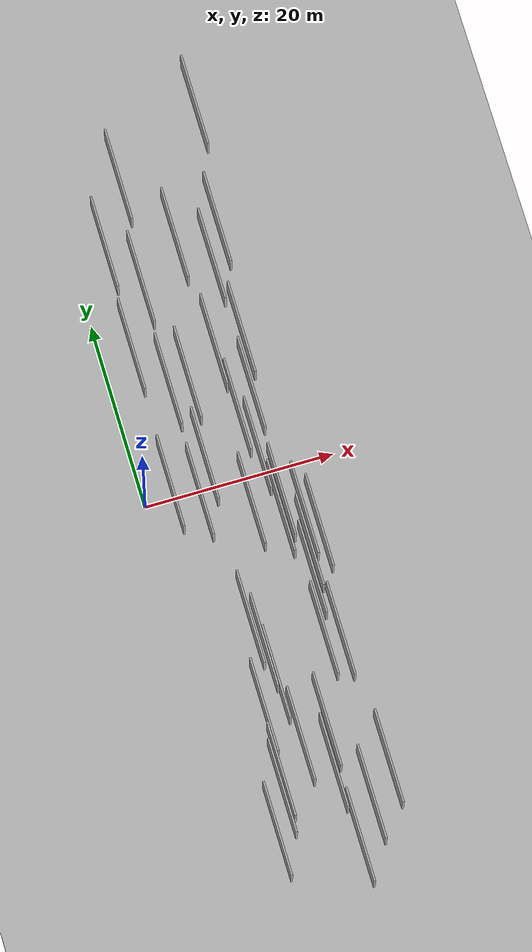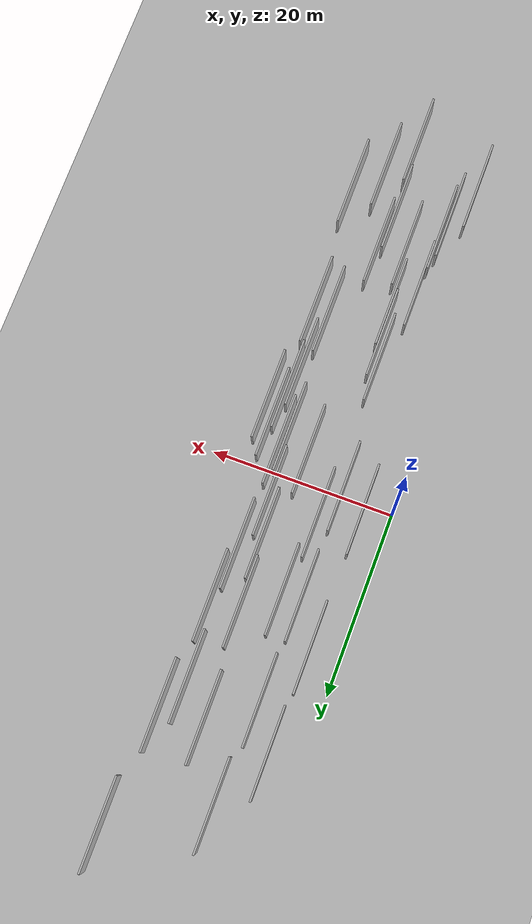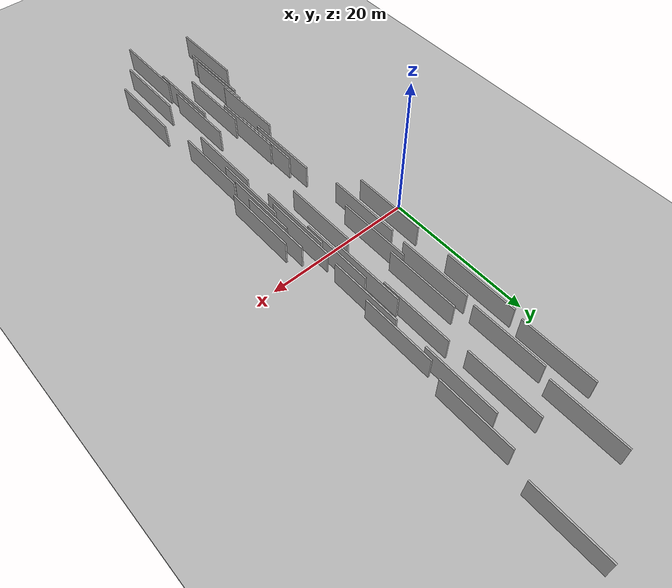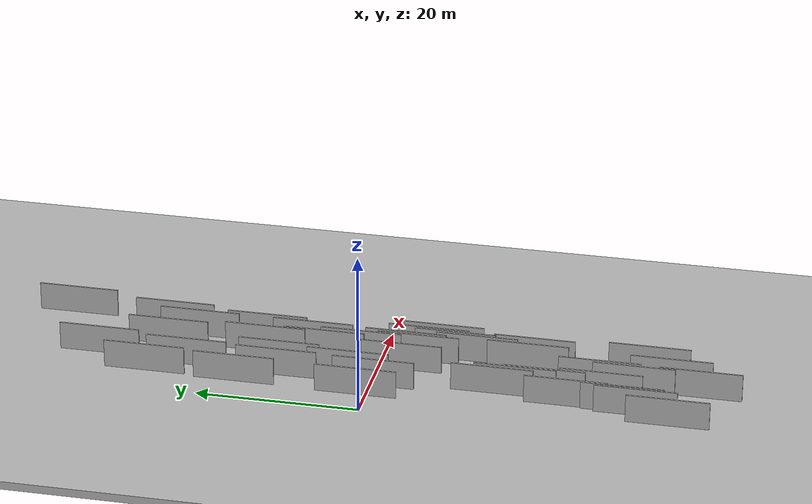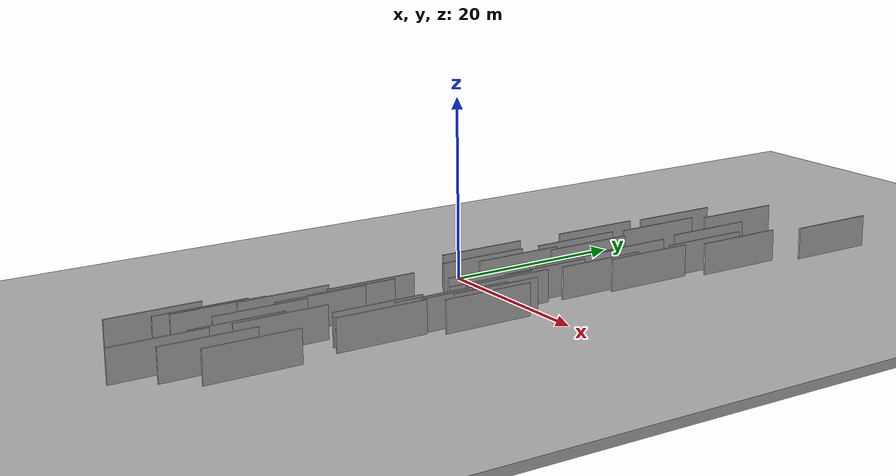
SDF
<?xml version="1.0" encoding="utf-8"?>

<sdf version="1.6">

   <world name="default">

      <gui fullscreen="0">

         <camera name="user_camera">

            <pose>-15 0 4.57585 0 0 0</pose>

            <view_controller>orbit</view_controller>

         </camera>

      </gui>

      <scene>

         <sky>

           <clouds>

             <speed>12</speed>

           </clouds>

         </sky>

         <ambient>0.4 0.4 0.4 1</ambient>

         <background>0.7 0.7 0.7 1</background>

         <shadows>1</shadows>

      </scene>

      <gravity>0 0 -9.8066</gravity>

      <magnetic_field>6e-06 2.3e-05 -4.2e-05</magnetic_field>

      <physics default="0" name="default_physics" type="ode">

         <ode>

            <solver>

               <type>quick</type>

               <iters>10</iters>

               <sor>1.0</sor>

               <use_dynamic_moi_rescaling>0</use_dynamic_moi_rescaling>

            </solver>

            <constraints>

               <cfm>0</cfm>

               <erp>0.2</erp>

               <contact_max_correcting_vel>100</contact_max_correcting_vel>

               <contact_surface_layer>0.001</contact_surface_layer>

            </constraints>

         </ode>

         <max_step_size>0.004</max_step_size>

         <real_time_factor>1</real_time_factor>

         <real_time_update_rate>250</real_time_update_rate>

      </physics>

      <light name="sun" type="directional">

         <cast_shadows>1</cast_shadows>

         <pose>0 0 10 0 0 0</pose>

         <diffuse>0.8 0.8 0.8 1</diffuse>

         <specular>0.2 0.2 0.2 1</specular>

         <attenuation>

            <range>1000</range>

            <constant>0.9</constant>

            <linear>0.01</linear>

            <quadratic>0.001</quadratic>

         </attenuation>

         <direction>-0.5 0.1 -0.9</direction>

      </light>

      <include>

         <name>ground_plane_1</name>

         <uri>model://HANNAS_ground_plane</uri>

         <pose>0 0 0  0 0 0</pose>

      </include>

      <include>

         <name>ground_plane_2</name>

         <uri>model://HANNAS_ground_plane</uri>

         <pose>100 0 0  0 0 0</pose>

      </include>

      <model name="HANNAS_wall_1">

         <static>1</static>

         <pose frame="">14.5591 14.6576 0.0 0.000000 0.000000 1.570796</pose>

         <link name="link">

            <pose frame="">0 0 2.00 0 0 0</pose>

            <collision name="collision">

               <geometry>

                  <box>

                     <size>10.00 0.2 4.00</size>

                  </box>

               </geometry>

               <max_contacts>10</max_contacts>

               <surface>

                  <contact>

                     <ode/>

                  </contact>

                  <bounce/>

                  <friction>

                     <torsional>

                        <ode/>

                     </torsional>

                     <ode/>

                  </friction>

               </surface>

            </collision>

            <visual name="visual">

               <cast_shadows>0</cast_shadows>

               <geometry>

                  <box>

                     <size>10.00 0.2 4.00</size>

                  </box>

               </geometry>

               <material>

                  <script>

                     <uri>model://HANNAS_wall/materials/scripts</uri>

                     <uri>model://HANNAS_wall/materials/textures</uri>

                     <name>vrc/HANNAS_wall</name>

                  </script>

               </material>

            </visual>

            <self_collide>0</self_collide>

            <enable_wind>0</enable_wind>

            <kinematic>0</kinematic>

         </link>

      </model>

      <model name="HANNAS_wall_2">

         <static>1</static>

         <pose frame="">12.6516 2.4701 0.0 0.000000 0.000000 1.570796</pose>

         <link name="link">

            <pose frame="">0 0 2.00 0 0 0</pose>

            <collision name="collision">

               <geometry>

                  <box>

                     <size>10.00 0.2 4.00</size>

                  </box>

               </geometry>

               <max_contacts>10</max_contacts>

               <surface>

                  <contact>

                     <ode/>

                  </contact>

                  <bounce/>

                  <friction>

                     <torsional>

                        <ode/>

                     </torsional>

                     <ode/>

                  </friction>

               </surface>

            </collision>

            <visual name="visual">

               <cast_shadows>0</cast_shadows>

               <geometry>

                  <box>

                     <size>10.00 0.2 4.00</size>

                  </box>

               </geometry>

               <material>

                  <script>

                     <uri>model://HANNAS_wall/materials/scripts</uri>

                     <uri>model://HANNAS_wall/materials/textures</uri>

                     <name>vrc/HANNAS_wall</name>

                  </script>

               </material>

            </visual>

            <self_collide>0</self_collide>

            <enable_wind>0</enable_wind>

            <kinematic>0</kinematic>

         </link>

      </model>

      <model name="HANNAS_wall_3">

         <static>1</static>

         <pose frame="">5.6440 -0.5587 0.0 0.000000 0.000000 1.570796</pose>

         <link name="link">

            <pose frame="">0 0 2.00 0 0 0</pose>

            <collision name="collision">

               <geometry>

                  <box>

                     <size>10.00 0.2 4.00</size>

                  </box>

               </geometry>

               <max_contacts>10</max_contacts>

               <surface>

                  <contact>

                     <ode/>

                  </contact>

                  <bounce/>

                  <friction>

                     <torsional>

                        <ode/>

                     </torsional>

                     <ode/>

                  </friction>

               </surface>

            </collision>

            <visual name="visual">

               <cast_shadows>0</cast_shadows>

               <geometry>

                  <box>

                     <size>10.00 0.2 4.00</size>

                  </box>

               </geometry>

               <material>

                  <script>

                     <uri>model://HANNAS_wall/materials/scripts</uri>

                     <uri>model://HANNAS_wall/materials/textures</uri>

                     <name>vrc/HANNAS_wall</name>

                  </script>

               </material>

            </visual>

            <self_collide>0</self_collide>

            <enable_wind>0</enable_wind>

            <kinematic>0</kinematic>

         </link>

      </model>

      <model name="HANNAS_wall_4">

         <static>1</static>

         <pose frame="">10.8336 26.2624 0.0 0.000000 0.000000 1.570796</pose>

         <link name="link">

            <pose frame="">0 0 2.00 0 0 0</pose>

            <collision name="collision">

               <geometry>

                  <box>

                     <size>10.00 0.2 4.00</size>

                  </box>

               </geometry>

               <max_contacts>10</max_contacts>

               <surface>

                  <contact>

                     <ode/>

                  </contact>

                  <bounce/>

                  <friction>

                     <torsional>

                        <ode/>

                     </torsional>

                     <ode/>

                  </friction>

               </surface>

            </collision>

            <visual name="visual">

               <cast_shadows>0</cast_shadows>

               <geometry>

                  <box>

                     <size>10.00 0.2 4.00</size>

                  </box>

               </geometry>

               <material>

                  <script>

                     <uri>model://HANNAS_wall/materials/scripts</uri>

                     <uri>model://HANNAS_wall/materials/textures</uri>

                     <name>vrc/HANNAS_wall</name>

                  </script>

               </material>

            </visual>

            <self_collide>0</self_collide>

            <enable_wind>0</enable_wind>

            <kinematic>0</kinematic>

         </link>

      </model>

      <model name="HANNAS_wall_5">

         <static>1</static>

         <pose frame="">14.3094 -11.5916 0.0 0.000000 0.000000 1.570796</pose>

         <link name="link">

            <pose frame="">0 0 2.00 0 0 0</pose>

            <collision name="collision">

               <geometry>

                  <box>

                     <size>10.00 0.2 4.00</size>

                  </box>

               </geometry>

               <max_contacts>10</max_contacts>

               <surface>

                  <contact>

                     <ode/>

                  </contact>

                  <bounce/>

                  <friction>

                     <torsional>

                        <ode/>

                     </torsional>

                     <ode/>

                  </friction>

               </surface>

            </collision>

            <visual name="visual">

               <cast_shadows>0</cast_shadows>

               <geometry>

                  <box>

                     <size>10.00 0.2 4.00</size>

                  </box>

               </geometry>

               <material>

                  <script>

                     <uri>model://HANNAS_wall/materials/scripts</uri>

                     <uri>model://HANNAS_wall/materials/textures</uri>

                     <name>vrc/HANNAS_wall</name>

                  </script>

               </material>

            </visual>

            <self_collide>0</self_collide>

            <enable_wind>0</enable_wind>

            <kinematic>0</kinematic>

         </link>

      </model>

      <model name="HANNAS_wall_6">

         <static>1</static>

         <pose frame="">5.8352 11.5006 0.0 0.000000 0.000000 1.570796</pose>

         <link name="link">

            <pose frame="">0 0 2.00 0 0 0</pose>

            <collision name="collision">

               <geometry>

                  <box>

                     <size>10.00 0.2 4.00</size>

                  </box>

               </geometry>

               <max_contacts>10</max_contacts>

               <surface>

                  <contact>

                     <ode/>

                  </contact>

                  <bounce/>

                  <friction>

                     <torsional>

                        <ode/>

                     </torsional>

                     <ode/>

                  </friction>

               </surface>

            </collision>

            <visual name="visual">

               <cast_shadows>0</cast_shadows>

               <geometry>

                  <box>

                     <size>10.00 0.2 4.00</size>

                  </box>

               </geometry>

               <material>

                  <script>

                     <uri>model://HANNAS_wall/materials/scripts</uri>

                     <uri>model://HANNAS_wall/materials/textures</uri>

                     <name>vrc/HANNAS_wall</name>

                  </script>

               </material>

            </visual>

            <self_collide>0</self_collide>

            <enable_wind>0</enable_wind>

            <kinematic>0</kinematic>

         </link>

      </model>

      <model name="HANNAS_wall_7">

         <static>1</static>

         <pose frame="">3.0012 1.0542 0.0 0.000000 0.000000 1.570796</pose>

         <link name="link">

            <pose frame="">0 0 2.00 0 0 0</pose>

            <collision name="collision">

               <geometry>

                  <box>

                     <size>10.00 0.2 4.00</size>

                  </box>

               </geometry>

               <max_contacts>10</max_contacts>

               <surface>

                  <contact>

                     <ode/>

                  </contact>

                  <bounce/>

                  <friction>

                     <torsional>

                        <ode/>

                     </torsional>

                     <ode/>

                  </friction>

               </surface>

            </collision>

            <visual name="visual">

               <cast_shadows>0</cast_shadows>

               <geometry>

                  <box>

                     <size>10.00 0.2 4.00</size>

                  </box>

               </geometry>

               <material>

                  <script>

                     <uri>model://HANNAS_wall/materials/scripts</uri>

                     <uri>model://HANNAS_wall/materials/textures</uri>

                     <name>vrc/HANNAS_wall</name>

                  </script>

               </material>

            </visual>

            <self_collide>0</self_collide>

            <enable_wind>0</enable_wind>

            <kinematic>0</kinematic>

         </link>

      </model>

      <model name="HANNAS_wall_8">

         <static>1</static>

         <pose frame="">10.9776 -39.4371 0.0 0.000000 0.000000 1.570796</pose>

         <link name="link">

            <pose frame="">0 0 2.00 0 0 0</pose>

            <collision name="collision">

               <geometry>

                  <box>

                     <size>10.00 0.2 4.00</size>

                  </box>

               </geometry>

               <max_contacts>10</max_contacts>

               <surface>

                  <contact>

                     <ode/>

                  </contact>

                  <bounce/>

                  <friction>

                     <torsional>

                        <ode/>

                     </torsional>

                     <ode/>

                  </friction>

               </surface>

            </collision>

            <visual name="visual">

               <cast_shadows>0</cast_shadows>

               <geometry>

                  <box>

                     <size>10.00 0.2 4.00</size>

                  </box>

               </geometry>

               <material>

                  <script>

                     <uri>model://HANNAS_wall/materials/scripts</uri>

                     <uri>model://HANNAS_wall/materials/textures</uri>

                     <name>vrc/HANNAS_wall</name>

                  </script>

               </material>

            </visual>

            <self_collide>0</self_collide>

            <enable_wind>0</enable_wind>

            <kinematic>0</kinematic>

         </link>

      </model>

      <model name="HANNAS_wall_9">

         <static>1</static>

         <pose frame="">15.4946 26.6555 0.0 0.000000 0.000000 1.570796</pose>

         <link name="link">

            <pose frame="">0 0 2.00 0 0 0</pose>

            <collision name="collision">

               <geometry>

                  <box>

                     <size>10.00 0.2 4.00</size>

                  </box>

               </geometry>

               <max_contacts>10</max_contacts>

               <surface>

                  <contact>

                     <ode/>

                  </contact>

                  <bounce/>

                  <friction>

                     <torsional>

                        <ode/>

                     </torsional>

                     <ode/>

                  </friction>

               </surface>

            </collision>

            <visual name="visual">

               <cast_shadows>0</cast_shadows>

               <geometry>

                  <box>

                     <size>10.00 0.2 4.00</size>

                  </box>

               </geometry>

               <material>

                  <script>

                     <uri>model://HANNAS_wall/materials/scripts</uri>

                     <uri>model://HANNAS_wall/materials/textures</uri>

                     <name>vrc/HANNAS_wall</name>

                  </script>

               </material>

            </visual>

            <self_collide>0</self_collide>

            <enable_wind>0</enable_wind>

            <kinematic>0</kinematic>

         </link>

      </model>

      <model name="HANNAS_wall_10">

         <static>1</static>

         <pose frame="">13.8523 23.0509 0.0 0.000000 0.000000 1.570796</pose>

         <link name="link">

            <pose frame="">0 0 2.00 0 0 0</pose>

            <collision name="collision">

               <geometry>

                  <box>

                     <size>10.00 0.2 4.00</size>

                  </box>

               </geometry>

               <max_contacts>10</max_contacts>

               <surface>

                  <contact>

                     <ode/>

                  </contact>

                  <bounce/>

                  <friction>

                     <torsional>

                        <ode/>

                     </torsional>

                     <ode/>

                  </friction>

               </surface>

            </collision>

            <visual name="visual">

               <cast_shadows>0</cast_shadows>

               <geometry>

                  <box>

                     <size>10.00 0.2 4.00</size>

                  </box>

               </geometry>

               <material>

                  <script>

                     <uri>model://HANNAS_wall/materials/scripts</uri>

                     <uri>model://HANNAS_wall/materials/textures</uri>

                     <name>vrc/HANNAS_wall</name>

                  </script>

               </material>

            </visual>

            <self_collide>0</self_collide>

            <enable_wind>0</enable_wind>

            <kinematic>0</kinematic>

         </link>

      </model>

      <model name="HANNAS_wall_11">

         <static>1</static>

         <pose frame="">8.2308 -27.8150 0.0 0.000000 0.000000 1.570796</pose>

         <link name="link">

            <pose frame="">0 0 2.00 0 0 0</pose>

            <collision name="collision">

               <geometry>

                  <box>

                     <size>10.00 0.2 4.00</size>

                  </box>

               </geometry>

               <max_contacts>10</max_contacts>

               <surface>

                  <contact>

                     <ode/>

                  </contact>

                  <bounce/>

                  <friction>

                     <torsional>

                        <ode/>

                     </torsional>

                     <ode/>

                  </friction>

               </surface>

            </collision>

            <visual name="visual">

               <cast_shadows>0</cast_shadows>

               <geometry>

                  <box>

                     <size>10.00 0.2 4.00</size>

                  </box>

               </geometry>

               <material>

                  <script>

                     <uri>model://HANNAS_wall/materials/scripts</uri>

                     <uri>model://HANNAS_wall/materials/textures</uri>

                     <name>vrc/HANNAS_wall</name>

                  </script>

               </material>

            </visual>

            <self_collide>0</self_collide>

            <enable_wind>0</enable_wind>

            <kinematic>0</kinematic>

         </link>

      </model>

      <model name="HANNAS_wall_12">

         <static>1</static>

         <pose frame="">7.9316 11.6078 0.0 0.000000 0.000000 1.570796</pose>

         <link name="link">

            <pose frame="">0 0 2.00 0 0 0</pose>

            <collision name="collision">

               <geometry>

                  <box>

                     <size>10.00 0.2 4.00</size>

                  </box>

               </geometry>

               <max_contacts>10</max_contacts>

               <surface>

                  <contact>

                     <ode/>

                  </contact>

                  <bounce/>

                  <friction>

                     <torsional>

                        <ode/>

                     </torsional>

                     <ode/>

                  </friction>

               </surface>

            </collision>

            <visual name="visual">

               <cast_shadows>0</cast_shadows>

               <geometry>

                  <box>

                     <size>10.00 0.2 4.00</size>

                  </box>

               </geometry>

               <material>

                  <script>

                     <uri>model://HANNAS_wall/materials/scripts</uri>

                     <uri>model://HANNAS_wall/materials/textures</uri>

                     <name>vrc/HANNAS_wall</name>

                  </script>

               </material>

            </visual>

            <self_collide>0</self_collide>

            <enable_wind>0</enable_wind>

            <kinematic>0</kinematic>

         </link>

      </model>

      <model name="HANNAS_wall_13">

         <static>1</static>

         <pose frame="">16.0471 -32.5343 0.0 0.000000 0.000000 1.570796</pose>

         <link name="link">

            <pose frame="">0 0 2.00 0 0 0</pose>

            <collision name="collision">

               <geometry>

                  <box>

                     <size>10.00 0.2 4.00</size>

                  </box>

               </geometry>

               <max_contacts>10</max_contacts>

               <surface>

                  <contact>

                     <ode/>

                  </contact>

                  <bounce/>

                  <friction>

                     <torsional>

                        <ode/>

                     </torsional>

                     <ode/>

                  </friction>

               </surface>

            </collision>

            <visual name="visual">

               <cast_shadows>0</cast_shadows>

               <geometry>

                  <box>

                     <size>10.00 0.2 4.00</size>

                  </box>

               </geometry>

               <material>

                  <script>

                     <uri>model://HANNAS_wall/materials/scripts</uri>

                     <uri>model://HANNAS_wall/materials/textures</uri>

                     <name>vrc/HANNAS_wall</name>

                  </script>

               </material>

            </visual>

            <self_collide>0</self_collide>

            <enable_wind>0</enable_wind>

            <kinematic>0</kinematic>

         </link>

      </model>

      <model name="HANNAS_wall_14">

         <static>1</static>

         <pose frame="">13.3429 -35.5786 0.0 0.000000 0.000000 1.570796</pose>

         <link name="link">

            <pose frame="">0 0 2.00 0 0 0</pose>

            <collision name="collision">

               <geometry>

                  <box>

                     <size>10.00 0.2 4.00</size>

                  </box>

               </geometry>

               <max_contacts>10</max_contacts>

               <surface>

                  <contact>

                     <ode/>

                  </contact>

                  <bounce/>

                  <friction>

                     <torsional>

                        <ode/>

                     </torsional>

                     <ode/>

                  </friction>

               </surface>

            </collision>

            <visual name="visual">

               <cast_shadows>0</cast_shadows>

               <geometry>

                  <box>

                     <size>10.00 0.2 4.00</size>

                  </box>

               </geometry>

               <material>

                  <script>

                     <uri>model://HANNAS_wall/materials/scripts</uri>

                     <uri>model://HANNAS_wall/materials/textures</uri>

                     <name>vrc/HANNAS_wall</name>

                  </script>

               </material>

            </visual>

            <self_collide>0</self_collide>

            <enable_wind>0</enable_wind>

            <kinematic>0</kinematic>

         </link>

      </model>

      <model name="HANNAS_wall_15">

         <static>1</static>

         <pose frame="">13.6002 -2.9209 0.0 0.000000 0.000000 1.570796</pose>

         <link name="link">

            <pose frame="">0 0 2.00 0 0 0</pose>

            <collision name="collision">

               <geometry>

                  <box>

                     <size>10.00 0.2 4.00</size>

                  </box>

               </geometry>

               <max_contacts>10</max_contacts>

               <surface>

                  <contact>

                     <ode/>

                  </contact>

                  <bounce/>

                  <friction>

                     <torsional>

                        <ode/>

                     </torsional>

                     <ode/>

                  </friction>

               </surface>

            </collision>

            <visual name="visual">

               <cast_shadows>0</cast_shadows>

               <geometry>

                  <box>

                     <size>10.00 0.2 4.00</size>

                  </box>

               </geometry>

               <material>

                  <script>

                     <uri>model://HANNAS_wall/materials/scripts</uri>

                     <uri>model://HANNAS_wall/materials/textures</uri>

                     <name>vrc/HANNAS_wall</name>

                  </script>

               </material>

            </visual>

            <self_collide>0</self_collide>

            <enable_wind>0</enable_wind>

            <kinematic>0</kinematic>

         </link>

      </model>

      <model name="HANNAS_wall_16">

         <static>1</static>

         <pose frame="">3.6301 27.3624 0.0 0.000000 0.000000 1.570796</pose>

         <link name="link">

            <pose frame="">0 0 2.00 0 0 0</pose>

            <collision name="collision">

               <geometry>

                  <box>

                     <size>10.00 0.2 4.00</size>

                  </box>

               </geometry>

               <max_contacts>10</max_contacts>

               <surface>

                  <contact>

                     <ode/>

                  </contact>

                  <bounce/>

                  <friction>

                     <torsional>

                        <ode/>

                     </torsional>

                     <ode/>

                  </friction>

               </surface>

            </collision>

            <visual name="visual">

               <cast_shadows>0</cast_shadows>

               <geometry>

                  <box>

                     <size>10.00 0.2 4.00</size>

                  </box>

               </geometry>

               <material>

                  <script>

                     <uri>model://HANNAS_wall/materials/scripts</uri>

                     <uri>model://HANNAS_wall/materials/textures</uri>

                     <name>vrc/HANNAS_wall</name>

                  </script>

               </material>

            </visual>

            <self_collide>0</self_collide>

            <enable_wind>0</enable_wind>

            <kinematic>0</kinematic>

         </link>

      </model>

      <model name="HANNAS_wall_17">

         <static>1</static>

         <pose frame="">5.3060 -30.7941 0.0 0.000000 0.000000 1.570796</pose>

         <link name="link">

            <pose frame="">0 0 2.00 0 0 0</pose>

            <collision name="collision">

               <geometry>

                  <box>

                     <size>10.00 0.2 4.00</size>

                  </box>

               </geometry>

               <max_contacts>10</max_contacts>

               <surface>

                  <contact>

                     <ode/>

                  </contact>

                  <bounce/>

                  <friction>

                     <torsional>

                        <ode/>

                     </torsional>

                     <ode/>

                  </friction>

               </surface>

            </collision>

            <visual name="visual">

               <cast_shadows>0</cast_shadows>

               <geometry>

                  <box>

                     <size>10.00 0.2 4.00</size>

                  </box>

               </geometry>

               <material>

                  <script>

                     <uri>model://HANNAS_wall/materials/scripts</uri>

                     <uri>model://HANNAS_wall/materials/textures</uri>

                     <name>vrc/HANNAS_wall</name>

                  </script>

               </material>

            </visual>

            <self_collide>0</self_collide>

            <enable_wind>0</enable_wind>

            <kinematic>0</kinematic>

         </link>

      </model>

      <model name="HANNAS_wall_18">

         <static>1</static>

         <pose frame="">6.8019 -14.8491 0.0 0.000000 0.000000 1.570796</pose>

         <link name="link">

            <pose frame="">0 0 2.00 0 0 0</pose>

            <collision name="collision">

               <geometry>

                  <box>

                     <size>10.00 0.2 4.00</size>

                  </box>

               </geometry>

               <max_contacts>10</max_contacts>

               <surface>

                  <contact>

                     <ode/>

                  </contact>

                  <bounce/>

                  <friction>

                     <torsional>

                        <ode/>

                     </torsional>

                     <ode/>

                  </friction>

               </surface>

            </collision>

            <visual name="visual">

               <cast_shadows>0</cast_shadows>

               <geometry>

                  <box>

                     <size>10.00 0.2 4.00</size>

                  </box>

               </geometry>

               <material>

                  <script>

                     <uri>model://HANNAS_wall/materials/scripts</uri>

                     <uri>model://HANNAS_wall/materials/textures</uri>

                     <name>vrc/HANNAS_wall</name>

                  </script>

               </material>

            </visual>

            <self_collide>0</self_collide>

            <enable_wind>0</enable_wind>

            <kinematic>0</kinematic>

         </link>

      </model>

      <model name="HANNAS_wall_19">

         <static>1</static>

         <pose frame="">11.4853 14.1973 0.0 0.000000 0.000000 1.570796</pose>

         <link name="link">

            <pose frame="">0 0 2.00 0 0 0</pose>

            <collision name="collision">

               <geometry>

                  <box>

                     <size>10.00 0.2 4.00</size>

                  </box>

               </geometry>

               <max_contacts>10</max_contacts>

               <surface>

                  <contact>

                     <ode/>

                  </contact>

                  <bounce/>

                  <friction>

                     <torsional>

                        <ode/>

                     </torsional>

                     <ode/>

                  </friction>

               </surface>

            </collision>

            <visual name="visual">

               <cast_shadows>0</cast_shadows>

               <geometry>

                  <box>

                     <size>10.00 0.2 4.00</size>

                  </box>

               </geometry>

               <material>

                  <script>

                     <uri>model://HANNAS_wall/materials/scripts</uri>

                     <uri>model://HANNAS_wall/materials/textures</uri>

                     <name>vrc/HANNAS_wall</name>

                  </script>

               </material>

            </visual>

            <self_collide>0</self_collide>

            <enable_wind>0</enable_wind>

            <kinematic>0</kinematic>

         </link>

      </model>

      <model name="HANNAS_wall_20">

         <static>1</static>

         <pose frame="">16.8270 39.4609 0.0 0.000000 0.000000 1.570796</pose>

         <link name="link">

            <pose frame="">0 0 2.00 0 0 0</pose>

            <collision name="collision">

               <geometry>

                  <box>

                     <size>10.00 0.2 4.00</size>

                  </box>

               </geometry>

               <max_contacts>10</max_contacts>

               <surface>

                  <contact>

                     <ode/>

                  </contact>

                  <bounce/>

                  <friction>

                     <torsional>

                        <ode/>

                     </torsional>

                     <ode/>

                  </friction>

               </surface>

            </collision>

            <visual name="visual">

               <cast_shadows>0</cast_shadows>

               <geometry>

                  <box>

                     <size>10.00 0.2 4.00</size>

                  </box>

               </geometry>

               <material>

                  <script>

                     <uri>model://HANNAS_wall/materials/scripts</uri>

                     <uri>model://HANNAS_wall/materials/textures</uri>

                     <name>vrc/HANNAS_wall</name>

                  </script>

               </material>

            </visual>

            <self_collide>0</self_collide>

            <enable_wind>0</enable_wind>

            <kinematic>0</kinematic>

         </link>

      </model>

      <model name="HANNAS_wall_21">

         <static>1</static>

         <pose frame="">13.6055 -17.9952 0.0 0.000000 0.000000 1.570796</pose>

         <link name="link">

            <pose frame="">0 0 2.00 0 0 0</pose>

            <collision name="collision">

               <geometry>

                  <box>

                     <size>10.00 0.2 4.00</size>

                  </box>

               </geometry>

               <max_contacts>10</max_contacts>

               <surface>

                  <contact>

                     <ode/>

                  </contact>

                  <bounce/>

                  <friction>

                     <torsional>

                        <ode/>

                     </torsional>

                     <ode/>

                  </friction>

               </surface>

            </collision>

            <visual name="visual">

               <cast_shadows>0</cast_shadows>

               <geometry>

                  <box>

                     <size>10.00 0.2 4.00</size>

                  </box>

               </geometry>

               <material>

                  <script>

                     <uri>model://HANNAS_wall/materials/scripts</uri>

                     <uri>model://HANNAS_wall/materials/textures</uri>

                     <name>vrc/HANNAS_wall</name>

                  </script>

               </material>

            </visual>

            <self_collide>0</self_collide>

            <enable_wind>0</enable_wind>

            <kinematic>0</kinematic>

         </link>

      </model>

      <model name="HANNAS_wall_22">

         <static>1</static>

         <pose frame="">16.3562 -7.1134 0.0 0.000000 0.000000 1.570796</pose>

         <link name="link">

            <pose frame="">0 0 2.00 0 0 0</pose>

            <collision name="collision">

               <geometry>

                  <box>

                     <size>10.00 0.2 4.00</size>

                  </box>

               </geometry>

               <max_contacts>10</max_contacts>

               <surface>

                  <contact>

                     <ode/>

                  </contact>

                  <bounce/>

                  <friction>

                     <torsional>

                        <ode/>

                     </torsional>

                     <ode/>

                  </friction>

               </surface>

            </collision>

            <visual name="visual">

               <cast_shadows>0</cast_shadows>

               <geometry>

                  <box>

                     <size>10.00 0.2 4.00</size>

                  </box>

               </geometry>

               <material>

                  <script>

                     <uri>model://HANNAS_wall/materials/scripts</uri>

                     <uri>model://HANNAS_wall/materials/textures</uri>

                     <name>vrc/HANNAS_wall</name>

                  </script>

               </material>

            </visual>

            <self_collide>0</self_collide>

            <enable_wind>0</enable_wind>

            <kinematic>0</kinematic>

         </link>

      </model>

      <model name="HANNAS_wall_23">

         <static>1</static>

         <pose frame="">3.2082 -36.5360 0.0 0.000000 0.000000 1.570796</pose>

         <link name="link">

            <pose frame="">0 0 2.00 0 0 0</pose>

            <collision name="collision">

               <geometry>

                  <box>

                     <size>10.00 0.2 4.00</size>

                  </box>

               </geometry>

               <max_contacts>10</max_contacts>

               <surface>

                  <contact>

                     <ode/>

                  </contact>

                  <bounce/>

                  <friction>

                     <torsional>

                        <ode/>

                     </torsional>

                     <ode/>

                  </friction>

               </surface>

            </collision>

            <visual name="visual">

               <cast_shadows>0</cast_shadows>

               <geometry>

                  <box>

                     <size>10.00 0.2 4.00</size>

                  </box>

               </geometry>

               <material>

                  <script>

                     <uri>model://HANNAS_wall/materials/scripts</uri>

                     <uri>model://HANNAS_wall/materials/textures</uri>

                     <name>vrc/HANNAS_wall</name>

                  </script>

               </material>

            </visual>

            <self_collide>0</self_collide>

            <enable_wind>0</enable_wind>

            <kinematic>0</kinematic>

         </link>

      </model>

      <model name="HANNAS_wall_24">

         <static>1</static>

         <pose frame="">5.5237 -23.9628 0.0 0.000000 0.000000 1.570796</pose>

         <link name="link">

            <pose frame="">0 0 2.00 0 0 0</pose>

            <collision name="collision">

               <geometry>

                  <box>

                     <size>10.00 0.2 4.00</size>

                  </box>

               </geometry>

               <max_contacts>10</max_contacts>

               <surface>

                  <contact>

                     <ode/>

                  </contact>

                  <bounce/>

                  <friction>

                     <torsional>

                        <ode/>

                     </torsional>

                     <ode/>

                  </friction>

               </surface>

            </collision>

            <visual name="visual">

               <cast_shadows>0</cast_shadows>

               <geometry>

                  <box>

                     <size>10.00 0.2 4.00</size>

                  </box>

               </geometry>

               <material>

                  <script>

                     <uri>model://HANNAS_wall/materials/scripts</uri>

                     <uri>model://HANNAS_wall/materials/textures</uri>

                     <name>vrc/HANNAS_wall</name>

                  </script>

               </material>

            </visual>

            <self_collide>0</self_collide>

            <enable_wind>0</enable_wind>

            <kinematic>0</kinematic>

         </link>

      </model>

      <model name="HANNAS_wall_25">

         <static>1</static>

         <pose frame="">13.0710 -4.5706 0.0 0.000000 0.000000 1.570796</pose>

         <link name="link">

            <pose frame="">0 0 2.00 0 0 0</pose>

            <collision name="collision">

               <geometry>

                  <box>

                     <size>10.00 0.2 4.00</size>

                  </box>

               </geometry>

               <max_contacts>10</max_contacts>

               <surface>

                  <contact>

                     <ode/>

                  </contact>

                  <bounce/>

                  <friction>

                     <torsional>

                        <ode/>

                     </torsional>

                     <ode/>

                  </friction>

               </surface>

            </collision>

            <visual name="visual">

               <cast_shadows>0</cast_shadows>

               <geometry>

                  <box>

                     <size>10.00 0.2 4.00</size>

                  </box>

               </geometry>

               <material>

                  <script>

                     <uri>model://HANNAS_wall/materials/scripts</uri>

                     <uri>model://HANNAS_wall/materials/textures</uri>

                     <name>vrc/HANNAS_wall</name>

                  </script>

               </material>

            </visual>

            <self_collide>0</self_collide>

            <enable_wind>0</enable_wind>

            <kinematic>0</kinematic>

         </link>

      </model>

      <model name="HANNAS_wall_26">

         <static>1</static>

         <pose frame="">14.8369 -8.8168 0.0 0.000000 0.000000 1.570796</pose>

         <link name="link">

            <pose frame="">0 0 2.00 0 0 0</pose>

            <collision name="collision">

               <geometry>

                  <box>

                     <size>10.00 0.2 4.00</size>

                  </box>

               </geometry>

               <max_contacts>10</max_contacts>

               <surface>

                  <contact>

                     <ode/>

                  </contact>

                  <bounce/>

                  <friction>

                     <torsional>

                        <ode/>

                     </torsional>

                     <ode/>

                  </friction>

               </surface>

            </collision>

            <visual name="visual">

               <cast_shadows>0</cast_shadows>

               <geometry>

                  <box>

                     <size>10.00 0.2 4.00</size>

                  </box>

               </geometry>

               <material>

                  <script>

                     <uri>model://HANNAS_wall/materials/scripts</uri>

                     <uri>model://HANNAS_wall/materials/textures</uri>

                     <name>vrc/HANNAS_wall</name>

                  </script>

               </material>

            </visual>

            <self_collide>0</self_collide>

            <enable_wind>0</enable_wind>

            <kinematic>0</kinematic>

         </link>

      </model>

      <model name="HANNAS_wall_27">

         <static>1</static>

         <pose frame="">11.1741 -27.1541 0.0 0.000000 0.000000 1.570796</pose>

         <link name="link">

            <pose frame="">0 0 2.00 0 0 0</pose>

            <collision name="collision">

               <geometry>

                  <box>

                     <size>10.00 0.2 4.00</size>

                  </box>

               </geometry>

               <max_contacts>10</max_contacts>

               <surface>

                  <contact>

                     <ode/>

                  </contact>

                  <bounce/>

                  <friction>

                     <torsional>

                        <ode/>

                     </torsional>

                     <ode/>

                  </friction>

               </surface>

            </collision>

            <visual name="visual">

               <cast_shadows>0</cast_shadows>

               <geometry>

                  <box>

                     <size>10.00 0.2 4.00</size>

                  </box>

               </geometry>

               <material>

                  <script>

                     <uri>model://HANNAS_wall/materials/scripts</uri>

                     <uri>model://HANNAS_wall/materials/textures</uri>

                     <name>vrc/HANNAS_wall</name>

                  </script>

               </material>

            </visual>

            <self_collide>0</self_collide>

            <enable_wind>0</enable_wind>

            <kinematic>0</kinematic>

         </link>

      </model>

      <model name="HANNAS_wall_28">

         <static>1</static>

         <pose frame="">10.4038 -2.9863 0.0 0.000000 0.000000 1.570796</pose>

         <link name="link">

            <pose frame="">0 0 2.00 0 0 0</pose>

            <collision name="collision">

               <geometry>

                  <box>

                     <size>10.00 0.2 4.00</size>

                  </box>

               </geometry>

               <max_contacts>10</max_contacts>

               <surface>

                  <contact>

                     <ode/>

                  </contact>

                  <bounce/>

                  <friction>

                     <torsional>

                        <ode/>

                     </torsional>

                     <ode/>

                  </friction>

               </surface>

            </collision>

            <visual name="visual">

               <cast_shadows>0</cast_shadows>

               <geometry>

                  <box>

                     <size>10.00 0.2 4.00</size>

                  </box>

               </geometry>

               <material>

                  <script>

                     <uri>model://HANNAS_wall/materials/scripts</uri>

                     <uri>model://HANNAS_wall/materials/textures</uri>

                     <name>vrc/HANNAS_wall</name>

                  </script>

               </material>

            </visual>

            <self_collide>0</self_collide>

            <enable_wind>0</enable_wind>

            <kinematic>0</kinematic>

         </link>

      </model>

      <model name="HANNAS_wall_29">

         <static>1</static>

         <pose frame="">7.4348 -17.5020 0.0 0.000000 0.000000 1.570796</pose>

         <link name="link">

            <pose frame="">0 0 2.00 0 0 0</pose>

            <collision name="collision">

               <geometry>

                  <box>

                     <size>10.00 0.2 4.00</size>

                  </box>

               </geometry>

               <max_contacts>10</max_contacts>

               <surface>

                  <contact>

                     <ode/>

                  </contact>

                  <bounce/>

                  <friction>

                     <torsional>

                        <ode/>

                     </torsional>

                     <ode/>

                  </friction>

               </surface>

            </collision>

            <visual name="visual">

               <cast_shadows>0</cast_shadows>

               <geometry>

                  <box>

                     <size>10.00 0.2 4.00</size>

                  </box>

               </geometry>

               <material>

                  <script>

                     <uri>model://HANNAS_wall/materials/scripts</uri>

                     <uri>model://HANNAS_wall/materials/textures</uri>

                     <name>vrc/HANNAS_wall</name>

                  </script>

               </material>

            </visual>

            <self_collide>0</self_collide>

            <enable_wind>0</enable_wind>

            <kinematic>0</kinematic>

         </link>

      </model>

      <model name="HANNAS_wall_30">

         <static>1</static>

         <pose frame="">15.2080 -18.5576 0.0 0.000000 0.000000 1.570796</pose>

         <link name="link">

            <pose frame="">0 0 2.00 0 0 0</pose>

            <collision name="collision">

               <geometry>

                  <box>

                     <size>10.00 0.2 4.00</size>

                  </box>

               </geometry>

               <max_contacts>10</max_contacts>

               <surface>

                  <contact>

                     <ode/>

                  </contact>

                  <bounce/>

                  <friction>

                     <torsional>

                        <ode/>

                     </torsional>

                     <ode/>

                  </friction>

               </surface>

            </collision>

            <visual name="visual">

               <cast_shadows>0</cast_shadows>

               <geometry>

                  <box>

                     <size>10.00 0.2 4.00</size>

                  </box>

               </geometry>

               <material>

                  <script>

                     <uri>model://HANNAS_wall/materials/scripts</uri>

                     <uri>model://HANNAS_wall/materials/textures</uri>

                     <name>vrc/HANNAS_wall</name>

                  </script>

               </material>

            </visual>

            <self_collide>0</self_collide>

            <enable_wind>0</enable_wind>

            <kinematic>0</kinematic>

         </link>

      </model>

      <model name="HANNAS_wall_31">

         <static>1</static>

         <pose frame="">13.8560 8.7367 0.0 0.000000 0.000000 1.570796</pose>

         <link name="link">

            <pose frame="">0 0 2.00 0 0 0</pose>

            <collision name="collision">

               <geometry>

                  <box>

                     <size>10.00 0.2 4.00</size>

                  </box>

               </geometry>

               <max_contacts>10</max_contacts>

               <surface>

                  <contact>

                     <ode/>

                  </contact>

                  <bounce/>

                  <friction>

                     <torsional>

                        <ode/>

                     </torsional>

                     <ode/>

                  </friction>

               </surface>

            </collision>

            <visual name="visual">

               <cast_shadows>0</cast_shadows>

               <geometry>

                  <box>

                     <size>10.00 0.2 4.00</size>

                  </box>

               </geometry>

               <material>

                  <script>

                     <uri>model://HANNAS_wall/materials/scripts</uri>

                     <uri>model://HANNAS_wall/materials/textures</uri>

                     <name>vrc/HANNAS_wall</name>

                  </script>

               </material>

            </visual>

            <self_collide>0</self_collide>

            <enable_wind>0</enable_wind>

            <kinematic>0</kinematic>

         </link>

      </model>

      <model name="HANNAS_wall_32">

         <static>1</static>

         <pose frame="">3.2516 16.1209 0.0 0.000000 0.000000 1.570796</pose>

         <link name="link">

            <pose frame="">0 0 2.00 0 0 0</pose>

            <collision name="collision">

               <geometry>

                  <box>

                     <size>10.00 0.2 4.00</size>

                  </box>

               </geometry>

               <max_contacts>10</max_contacts>

               <surface>

                  <contact>

                     <ode/>

                  </contact>

                  <bounce/>

                  <friction>

                     <torsional>

                        <ode/>

                     </torsional>

                     <ode/>

                  </friction>

               </surface>

            </collision>

            <visual name="visual">

               <cast_shadows>0</cast_shadows>

               <geometry>

                  <box>

                     <size>10.00 0.2 4.00</size>

                  </box>

               </geometry>

               <material>

                  <script>

                     <uri>model://HANNAS_wall/materials/scripts</uri>

                     <uri>model://HANNAS_wall/materials/textures</uri>

                     <name>vrc/HANNAS_wall</name>

                  </script>

               </material>

            </visual>

            <self_collide>0</self_collide>

            <enable_wind>0</enable_wind>

            <kinematic>0</kinematic>

         </link>

      </model>

      <model name="HANNAS_wall_33">

         <static>1</static>

         <pose frame="">15.2906 -5.4555 0.0 0.000000 0.000000 1.570796</pose>

         <link name="link">

            <pose frame="">0 0 2.00 0 0 0</pose>

            <collision name="collision">

               <geometry>

                  <box>

                     <size>10.00 0.2 4.00</size>

                  </box>

               </geometry>

               <max_contacts>10</max_contacts>

               <surface>

                  <contact>

                     <ode/>

                  </contact>

                  <bounce/>

                  <friction>

                     <torsional>

                        <ode/>

                     </torsional>

                     <ode/>

                  </friction>

               </surface>

            </collision>

            <visual name="visual">

               <cast_shadows>0</cast_shadows>

               <geometry>

                  <box>

                     <size>10.00 0.2 4.00</size>

                  </box>

               </geometry>

               <material>

                  <script>

                     <uri>model://HANNAS_wall/materials/scripts</uri>

                     <uri>model://HANNAS_wall/materials/textures</uri>

                     <name>vrc/HANNAS_wall</name>

                  </script>

               </material>

            </visual>

            <self_collide>0</self_collide>

            <enable_wind>0</enable_wind>

            <kinematic>0</kinematic>

         </link>

      </model>

      <model name="HANNAS_wall_34">

         <static>1</static>

         <pose frame="">11.8388 6.8833 0.0 0.000000 0.000000 1.570796</pose>

         <link name="link">

            <pose frame="">0 0 2.00 0 0 0</pose>

            <collision name="collision">

               <geometry>

                  <box>

                     <size>10.00 0.2 4.00</size>

                  </box>

               </geometry>

               <max_contacts>10</max_contacts>

               <surface>

                  <contact>

                     <ode/>

                  </contact>

                  <bounce/>

                  <friction>

                     <torsional>

                        <ode/>

                     </torsional>

                     <ode/>

                  </friction>

               </surface>

            </collision>

            <visual name="visual">

               <cast_shadows>0</cast_shadows>

               <geometry>

                  <box>

                     <size>10.00 0.2 4.00</size>

                  </box>

               </geometry>

               <material>

                  <script>

                     <uri>model://HANNAS_wall/materials/scripts</uri>

                     <uri>model://HANNAS_wall/materials/textures</uri>

                     <name>vrc/HANNAS_wall</name>

                  </script>

               </material>

            </visual>

            <self_collide>0</self_collide>

            <enable_wind>0</enable_wind>

            <kinematic>0</kinematic>

         </link>

      </model>

      <model name="HANNAS_wall_35">

         <static>1</static>

         <pose frame="">6.1838 22.7724 0.0 0.000000 0.000000 1.570796</pose>

         <link name="link">

            <pose frame="">0 0 2.00 0 0 0</pose>

            <collision name="collision">

               <geometry>

                  <box>

                     <size>10.00 0.2 4.00</size>

                  </box>

               </geometry>

               <max_contacts>10</max_contacts>

               <surface>

                  <contact>

                     <ode/>

                  </contact>

                  <bounce/>

                  <friction>

                     <torsional>

                        <ode/>

                     </torsional>

                     <ode/>

                  </friction>

               </surface>

            </collision>

            <visual name="visual">

               <cast_shadows>0</cast_shadows>

               <geometry>

                  <box>

                     <size>10.00 0.2 4.00</size>

                  </box>

               </geometry>

               <material>

                  <script>

                     <uri>model://HANNAS_wall/materials/scripts</uri>

                     <uri>model://HANNAS_wall/materials/textures</uri>

                     <name>vrc/HANNAS_wall</name>

                  </script>

               </material>

            </visual>

            <self_collide>0</self_collide>

            <enable_wind>0</enable_wind>

            <kinematic>0</kinematic>

         </link>

      </model>

      <model name="HANNAS_wall_36">

         <static>1</static>

         <pose frame="">7.0269 33.9500 0.0 0.000000 0.000000 1.570796</pose>

         <link name="link">

            <pose frame="">0 0 2.00 0 0 0</pose>

            <collision name="collision">

               <geometry>

                  <box>

                     <size>10.00 0.2 4.00</size>

                  </box>

               </geometry>

               <max_contacts>10</max_contacts>

               <surface>

                  <contact>

                     <ode/>

                  </contact>

                  <bounce/>

                  <friction>

                     <torsional>

                        <ode/>

                     </torsional>

                     <ode/>

                  </friction>

               </surface>

            </collision>

            <visual name="visual">

               <cast_shadows>0</cast_shadows>

               <geometry>

                  <box>

                     <size>10.00 0.2 4.00</size>

                  </box>

               </geometry>

               <material>

                  <script>

                     <uri>model://HANNAS_wall/materials/scripts</uri>

                     <uri>model://HANNAS_wall/materials/textures</uri>

                     <name>vrc/HANNAS_wall</name>

                  </script>

               </material>

            </visual>

            <self_collide>0</self_collide>

            <enable_wind>0</enable_wind>

            <kinematic>0</kinematic>

         </link>

      </model>

      <model name="HANNAS_wall_37">

         <static>1</static>

         <pose frame="">7.1787 2.9043 0.0 0.000000 0.000000 1.570796</pose>

         <link name="link">

            <pose frame="">0 0 2.00 0 0 0</pose>

            <collision name="collision">

               <geometry>

                  <box>

                     <size>10.00 0.2 4.00</size>

                  </box>

               </geometry>

               <max_contacts>10</max_contacts>

               <surface>

                  <contact>

                     <ode/>

                  </contact>

                  <bounce/>

                  <friction>

                     <torsional>

                        <ode/>

                     </torsional>

                     <ode/>

                  </friction>

               </surface>

            </collision>

            <visual name="visual">

               <cast_shadows>0</cast_shadows>

               <geometry>

                  <box>

                     <size>10.00 0.2 4.00</size>

                  </box>

               </geometry>

               <material>

                  <script>

                     <uri>model://HANNAS_wall/materials/scripts</uri>

                     <uri>model://HANNAS_wall/materials/textures</uri>

                     <name>vrc/HANNAS_wall</name>

                  </script>

               </material>

            </visual>

            <self_collide>0</self_collide>

            <enable_wind>0</enable_wind>

            <kinematic>0</kinematic>

         </link>

      </model>

      <model name="HANNAS_wall_38">

         <static>1</static>

         <pose frame="">7.6711 -21.0165 0.0 0.000000 0.000000 1.570796</pose>

         <link name="link">

            <pose frame="">0 0 2.00 0 0 0</pose>

            <collision name="collision">

               <geometry>

                  <box>

                     <size>10.00 0.2 4.00</size>

                  </box>

               </geometry>

               <max_contacts>10</max_contacts>

               <surface>

                  <contact>

                     <ode/>

                  </contact>

                  <bounce/>

                  <friction>

                     <torsional>

                        <ode/>

                     </torsional>

                     <ode/>

                  </friction>

               </surface>

            </collision>

            <visual name="visual">

               <cast_shadows>0</cast_shadows>

               <geometry>

                  <box>

                     <size>10.00 0.2 4.00</size>

                  </box>

               </geometry>

               <material>

                  <script>

                     <uri>model://HANNAS_wall/materials/scripts</uri>

                     <uri>model://HANNAS_wall/materials/textures</uri>

                     <name>vrc/HANNAS_wall</name>

                  </script>

               </material>

            </visual>

            <self_collide>0</self_collide>

            <enable_wind>0</enable_wind>

            <kinematic>0</kinematic>

         </link>

      </model>

      <model name="HANNAS_wall_39">

         <static>1</static>

         <pose frame="">10.6333 -31.3852 0.0 0.000000 0.000000 1.570796</pose>

         <link name="link">

            <pose frame="">0 0 2.00 0 0 0</pose>

            <collision name="collision">

               <geometry>

                  <box>

                     <size>10.00 0.2 4.00</size>

                  </box>

               </geometry>

               <max_contacts>10</max_contacts>

               <surface>

                  <contact>

                     <ode/>

                  </contact>

                  <bounce/>

                  <friction>

                     <torsional>

                        <ode/>

                     </torsional>

                     <ode/>

                  </friction>

               </surface>

            </collision>

            <visual name="visual">

               <cast_shadows>0</cast_shadows>

               <geometry>

                  <box>

                     <size>10.00 0.2 4.00</size>

                  </box>

               </geometry>

               <material>

                  <script>

                     <uri>model://HANNAS_wall/materials/scripts</uri>

                     <uri>model://HANNAS_wall/materials/textures</uri>

                     <name>vrc/HANNAS_wall</name>

                  </script>

               </material>

            </visual>

            <self_collide>0</self_collide>

            <enable_wind>0</enable_wind>

            <kinematic>0</kinematic>

         </link>

      </model>

      <model name="HANNAS_wall_40">

         <static>1</static>

         <pose frame="">4.9202 -32.4458 0.0 0.000000 0.000000 1.570796</pose>

         <link name="link">

            <pose frame="">0 0 2.00 0 0 0</pose>

            <collision name="collision">

               <geometry>

                  <box>

                     <size>10.00 0.2 4.00</size>

                  </box>

               </geometry>

               <max_contacts>10</max_contacts>

               <surface>

                  <contact>

                     <ode/>

                  </contact>

                  <bounce/>

                  <friction>

                     <torsional>

                        <ode/>

                     </torsional>

                     <ode/>

                  </friction>

               </surface>

            </collision>

            <visual name="visual">

               <cast_shadows>0</cast_shadows>

               <geometry>

                  <box>

                     <size>10.00 0.2 4.00</size>

                  </box>

               </geometry>

               <material>

                  <script>

                     <uri>model://HANNAS_wall/materials/scripts</uri>

                     <uri>model://HANNAS_wall/materials/textures</uri>

                     <name>vrc/HANNAS_wall</name>

                  </script>

               </material>

            </visual>

            <self_collide>0</self_collide>

            <enable_wind>0</enable_wind>

            <kinematic>0</kinematic>

         </link>

      </model>

   </world>

</sdf>
